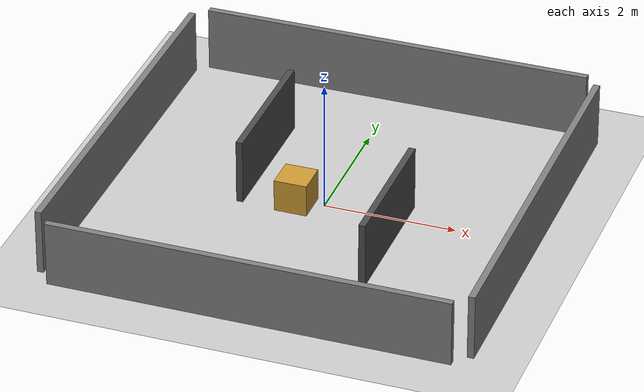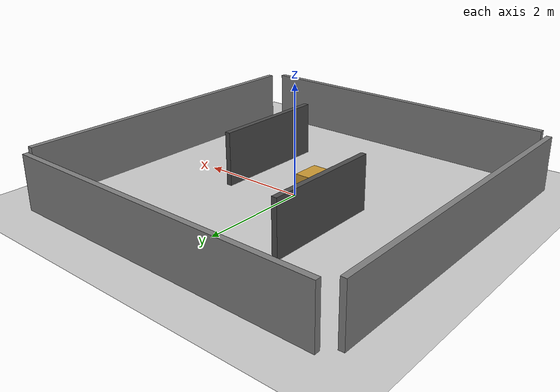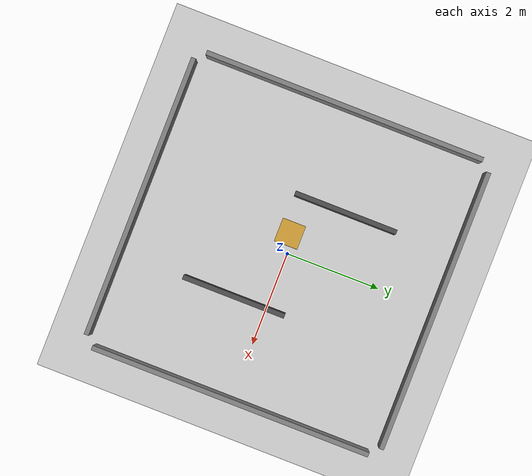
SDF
<?xml version="1.0"?>
<sdf version="1.6">
  <world name="house_like">
    <include>
      <uri>model://ground_plane</uri>
    </include>
    <include>
      <uri>model://sun</uri>
    </include>

    <!-- Simple "house" layout made of static walls -->
    <model name="wall_north">
      <static>true</static>
      <pose>0 3.2 0.5 0 0 0</pose>
      <link name="link">
        <collision name="collision">
          <geometry><box><size>6.0 0.1 1.0</size></box></geometry>
        </collision>
        <visual name="visual">
          <geometry><box><size>6.0 0.1 1.0</size></box></geometry>
          <material><ambient>0.5 0.5 0.5 1</ambient></material>
        </visual>
      </link>
    </model>

    <model name="wall_south">
      <static>true</static>
      <pose>0 -3.2 0.5 0 0 0</pose>
      <link name="link">
        <collision name="collision">
          <geometry><box><size>6.0 0.1 1.0</size></box></geometry>
        </collision>
        <visual name="visual">
          <geometry><box><size>6.0 0.1 1.0</size></box></geometry>
          <material><ambient>0.5 0.5 0.5 1</ambient></material>
        </visual>
      </link>
    </model>

    <model name="wall_east">
      <static>true</static>
      <pose>3.2 0 0.5 0 0 0</pose>
      <link name="link">
        <collision name="collision">
          <geometry><box><size>0.1 6.0 1.0</size></box></geometry>
        </collision>
        <visual name="visual">
          <geometry><box><size>0.1 6.0 1.0</size></box></geometry>
          <material><ambient>0.5 0.5 0.5 1</ambient></material>
        </visual>
      </link>
    </model>

    <model name="wall_west">
      <static>true</static>
      <pose>-3.2 0 0.5 0 0 0</pose>
      <link name="link">
        <collision name="collision">
          <geometry><box><size>0.1 6.0 1.0</size></box></geometry>
        </collision>
        <visual name="visual">
          <geometry><box><size>0.1 6.0 1.0</size></box></geometry>
          <material><ambient>0.5 0.5 0.5 1</ambient></material>
        </visual>
      </link>
    </model>

    <!-- Interior partitions -->
    <model name="partition_1">
      <static>true</static>
      <pose>-1.2 0.8 0.5 0 0 0</pose>
      <link name="link">
        <collision name="collision">
          <geometry><box><size>0.1 2.2 1.0</size></box></geometry>
        </collision>
        <visual name="visual">
          <geometry><box><size>0.1 2.2 1.0</size></box></geometry>
          <material><ambient>0.3 0.3 0.3 1</ambient></material>
        </visual>
      </link>
    </model>

    <model name="partition_2">
      <static>true</static>
      <pose>1.2 -0.7 0.5 0 0 0</pose>
      <link name="link">
        <collision name="collision">
          <geometry><box><size>0.1 2.2 1.0</size></box></geometry>
        </collision>
        <visual name="visual">
          <geometry><box><size>0.1 2.2 1.0</size></box></geometry>
          <material><ambient>0.3 0.3 0.3 1</ambient></material>
        </visual>
      </link>
    </model>

    <!-- A few block obstacles -->
    <model name="block_1">
      <static>true</static>
      <pose>-0.4 -0.1 0.25 0 0 0</pose>
      <link name="link">
        <collision name="collision">
          <geometry><box><size>0.5 0.5 0.5</size></box></geometry>
        </collision>
        <visual name="visual">
          <geometry><box><size>0.5 0.5 0.5</size></box></geometry>
          <material><ambient>0.8 0.6 0.2 1</ambient></material>
        </visual>
      </link>
    </model>
  </world>
</sdf>
